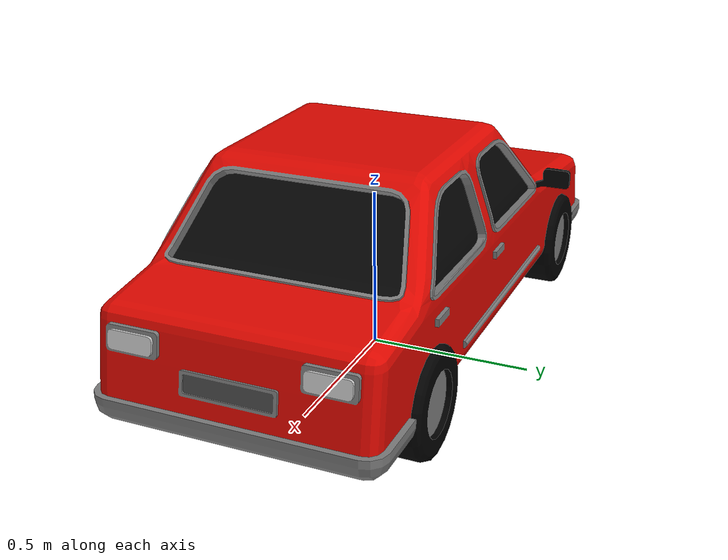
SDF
<?xml version="1.0" ?>
<sdf version="1.6">
  <model name="car">
    <static>true</static>
    <link name="link">

      <!-- COLISIÓN -->
      <collision name="collision">
        <geometry>
          <mesh>
            <scale>0.35 0.35 0.35</scale>
            <uri>model://car/meshes/Car.dae</uri>
          </mesh>
        </geometry>
      </collision>

      <!-- VISUAL -->
      <visual name="visual">
        <geometry>
          <mesh>
            <scale>0.35 0.35 0.35</scale>
            <uri>model://car/meshes/Car.dae</uri>
          </mesh>
        </geometry>
      </visual>

    </link>
  </model>
</sdf>
